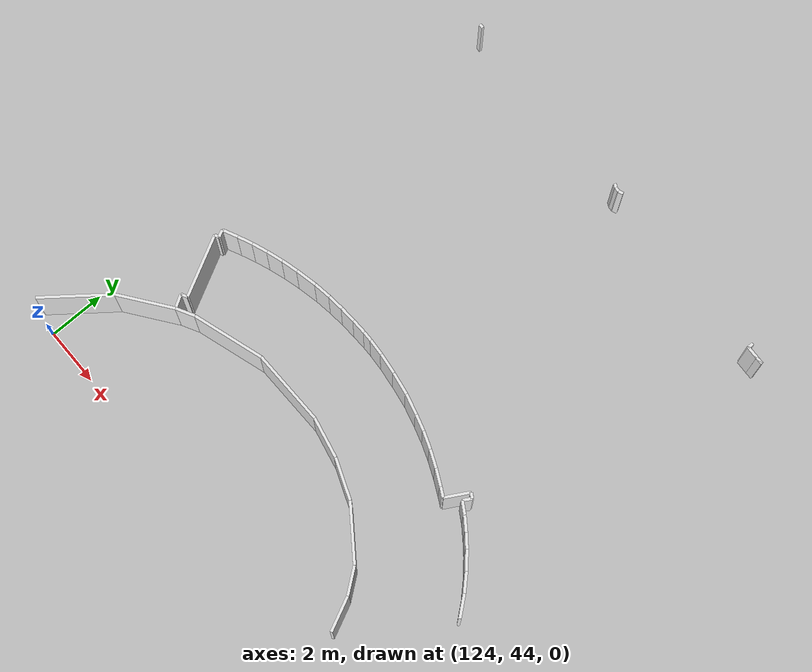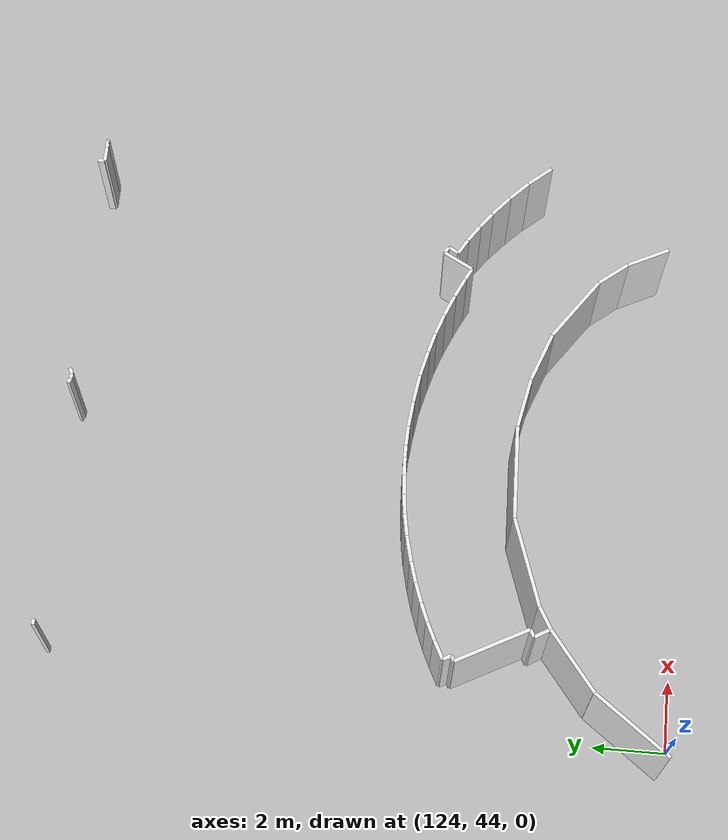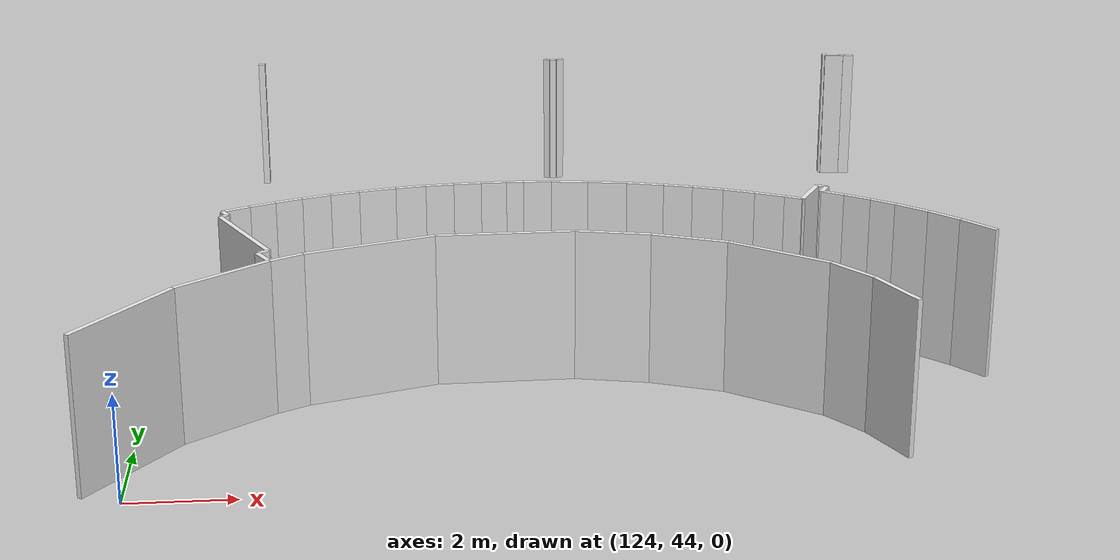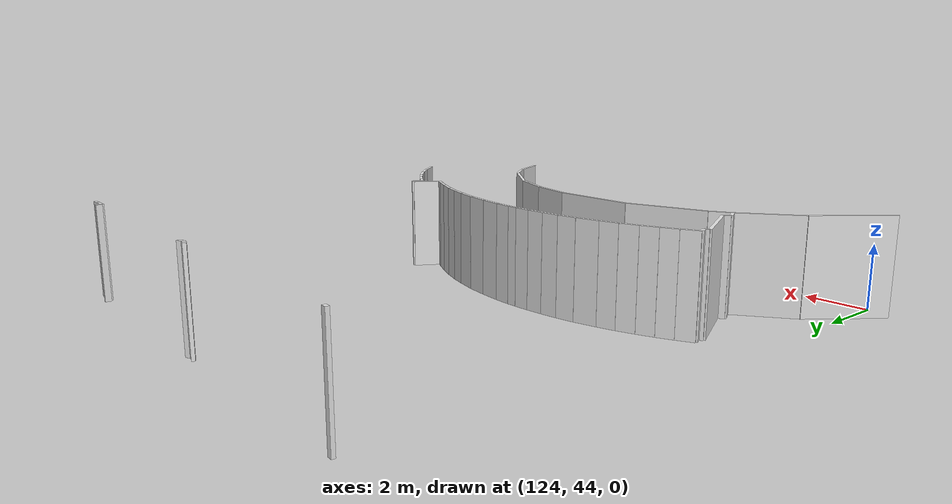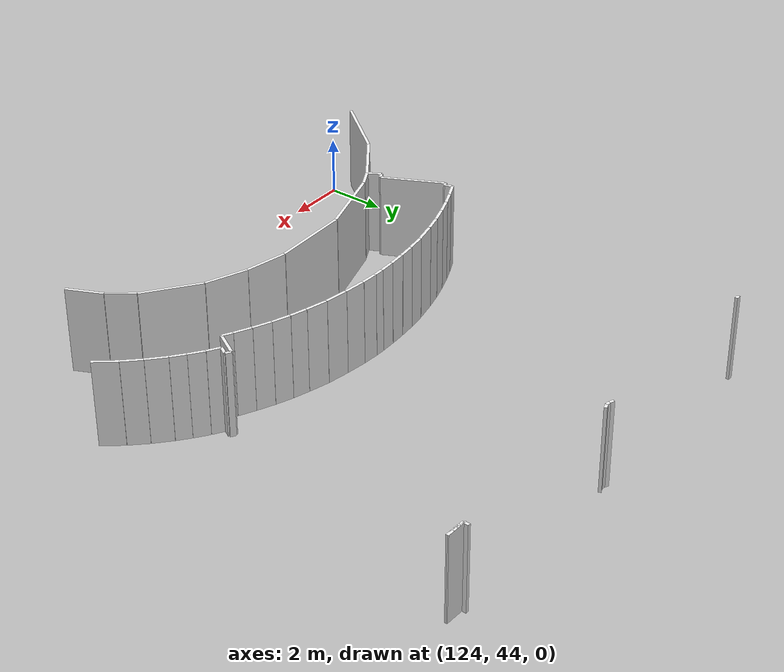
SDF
<sdf version="1.6">
 <world name="default">
  <model name="wall_137.4_45.3">
   <static>true</static>
   <pose>137.43499999999767 45.33499999996275 1.5 0 0 2.023768184880482</pose>
   <link name="link">
    <visual name="visual">
     <geometry><box><size>1.2567418190697117 0.1 3</size></box></geometry>
     <material>
      <script><uri>file://media/materials/scripts/gazebo.material</uri><name>Gazebo/White</name></script>
     </material>
    </visual>
   </link>
  </model>
  <model name="wall_136.8_46.3">
   <static>true</static>
   <pose>136.84999999997672 46.294999999925494 1.5 0 0 2.23620628008944</pose>
   <link name="link">
    <visual name="visual">
     <geometry><box><size>1.00424100695654 0.1 3</size></box></geometry>
     <material>
      <script><uri>file://media/materials/scripts/gazebo.material</uri><name>Gazebo/White</name></script>
     </material>
    </visual>
   </link>
  </model>
  <model name="wall_135.7_47.3">
   <static>true</static>
   <pose>135.69499999997788 47.294999999925494 1.5 0 0 2.52022459985605</pose>
   <link name="link">
    <visual name="visual">
     <geometry><box><size>2.0785090810284466 0.1 3</size></box></geometry>
     <material>
      <script><uri>file://media/materials/scripts/gazebo.material</uri><name>Gazebo/White</name></script>
     </material>
    </visual>
   </link>
  </model>
  <model name="wall_134.2_48.2">
   <static>true</static>
   <pose>134.16499999997905 48.15999999991618 1.5 0 0 2.7788283943136243</pose>
   <link name="link">
    <visual name="visual">
     <geometry><box><size>1.4653668482692697 0.1 3</size></box></geometry>
     <material>
      <script><uri>file://media/materials/scripts/gazebo.material</uri><name>Gazebo/White</name></script>
     </material>
    </visual>
   </link>
  </model>
  <model name="wall_132.8_48.6">
   <static>true</static>
   <pose>132.77499999999418 48.56499999994412 1.5 0 0 2.9387475563767675</pose>
   <link name="link">
    <visual name="visual">
     <geometry><box><size>1.4395138067935933 0.1 3</size></box></geometry>
     <material>
      <script><uri>file://media/materials/scripts/gazebo.material</uri><name>Gazebo/White</name></script>
     </material>
    </visual>
   </link>
  </model>
  <model name="wall_130.8_48.7">
   <static>true</static>
   <pose>130.75500000000466 48.675000000046566 1.5 0 0 -3.1149829664066115</pose>
   <link name="link">
    <visual name="visual">
     <geometry><box><size>2.6309313940125887 0.1 3</size></box></geometry>
     <material>
      <script><uri>file://media/materials/scripts/gazebo.material</uri><name>Gazebo/White</name></script>
     </material>
    </visual>
   </link>
  </model>
  <model name="wall_128.2_48.2">
   <static>true</static>
   <pose>128.23500000001513 48.23999999999069 1.5 0 0 -2.8210874284542298</pose>
   <link name="link">
    <visual name="visual">
     <geometry><box><size>2.5393109302178 0.1 3</size></box></geometry>
     <material>
      <script><uri>file://media/materials/scripts/gazebo.material</uri><name>Gazebo/White</name></script>
     </material>
    </visual>
   </link>
  </model>
  <model name="wall_126.7_47.7">
   <static>true</static>
   <pose>126.73500000001513 47.674999999813735 1.5 0 0 -2.6316205938106854</pose>
   <link name="link">
    <visual name="visual">
     <geometry><box><size>0.6760177513049456 0.1 3</size></box></geometry>
     <material>
      <script><uri>file://media/materials/scripts/gazebo.material</uri><name>Gazebo/White</name></script>
     </material>
    </visual>
   </link>
  </model>
  <model name="wall_125.6_46.9">
   <static>true</static>
   <pose>125.63500000000931 46.894999999785796 1.5 0 0 -2.489207277071973</pose>
   <link name="link">
    <visual name="visual">
     <geometry><box><size>2.0260799589130722 0.1 3</size></box></geometry>
     <material>
      <script><uri>file://media/materials/scripts/gazebo.material</uri><name>Gazebo/White</name></script>
     </material>
    </visual>
   </link>
  </model>
  <model name="wall_124.1_45.3">
   <static>true</static>
   <pose>124.05500000002212 45.26000000000931 1.5 0 0 -2.2205424754970724</pose>
   <link name="link">
    <visual name="visual">
     <geometry><box><size>2.562049960132707 0.1 3</size></box></geometry>
     <material>
      <script><uri>file://media/materials/scripts/gazebo.material</uri><name>Gazebo/White</name></script>
     </material>
    </visual>
   </link>
  </model>
  <model name="wall_139.7_48.5">
   <static>true</static>
   <pose>139.72500000000582 48.50499999988824 1.5 0 0 2.2702001990573595</pose>
   <link name="link">
    <visual name="visual">
     <geometry><box><size>0.8232860984051048 0.1 3</size></box></geometry>
     <material>
      <script><uri>file://media/materials/scripts/gazebo.material</uri><name>Gazebo/White</name></script>
     </material>
    </visual>
   </link>
  </model>
  <model name="wall_139.2_49.1">
   <static>true</static>
   <pose>139.21000000002095 49.06999999983236 1.5 0 0 2.356194490192345</pose>
   <link name="link">
    <visual name="visual">
     <geometry><box><size>0.7071067811865476 0.1 3</size></box></geometry>
     <material>
      <script><uri>file://media/materials/scripts/gazebo.material</uri><name>Gazebo/White</name></script>
     </material>
    </visual>
   </link>
  </model>
  <model name="wall_138.7_49.6">
   <static>true</static>
   <pose>138.69000000000233 49.55499999993481 1.5 0 0 2.425390768629206</pose>
   <link name="link">
    <visual name="visual">
     <geometry><box><size>0.7158910533264337 0.1 3</size></box></geometry>
     <material>
      <script><uri>file://media/materials/scripts/gazebo.material</uri><name>Gazebo/White</name></script>
     </material>
    </visual>
   </link>
  </model>
  <model name="wall_138.2_49.9">
   <static>true</static>
   <pose>138.20999999999185 49.949999999953434 1.5 0 0 2.490515932379146</pose>
   <link name="link">
    <visual name="visual">
     <geometry><box><size>0.5280151511832034 0.1 3</size></box></geometry>
     <material>
      <script><uri>file://media/materials/scripts/gazebo.material</uri><name>Gazebo/White</name></script>
     </material>
    </visual>
   </link>
  </model>
  <model name="wall_137.8_50.3">
   <static>true</static>
   <pose>137.76999999998952 50.27000000001863 1.5 0 0 2.5337906570605933</pose>
   <link name="link">
    <visual name="visual">
     <geometry><box><size>0.5603570292322684 0.1 3</size></box></geometry>
     <material>
      <script><uri>file://media/materials/scripts/gazebo.material</uri><name>Gazebo/White</name></script>
     </material>
    </visual>
   </link>
  </model>
  <model name="wall_137.3_50.6">
   <static>true</static>
   <pose>137.33499999999185 50.550000000046566 1.5 0 0 2.612003055220354</pose>
   <link name="link">
    <visual name="visual">
     <geometry><box><size>0.4750789406643591 0.1 3</size></box></geometry>
     <material>
      <script><uri>file://media/materials/scripts/gazebo.material</uri><name>Gazebo/White</name></script>
     </material>
    </visual>
   </link>
  </model>
  <model name="wall_137.2_50.8">
   <static>true</static>
   <pose>137.20999999999185 50.81000000005588 1.5 0 0 1.0516502130185124</pose>
   <link name="link">
    <visual name="visual">
     <geometry><box><size>0.3224903101456472 0.1 3</size></box></geometry>
     <material>
      <script><uri>file://media/materials/scripts/gazebo.material</uri><name>Gazebo/White</name></script>
     </material>
    </visual>
   </link>
  </model>
  <model name="wall_137.2_51.0">
   <static>true</static>
   <pose>137.19999999998254 51.0 1.5 0 0 2.6344941507624737</pose>
   <link name="link">
    <visual name="visual">
     <geometry><box><size>0.205912602632718 0.1 3</size></box></geometry>
     <material>
      <script><uri>file://media/materials/scripts/gazebo.material</uri><name>Gazebo/White</name></script>
     </material>
    </visual>
   </link>
  </model>
  <model name="wall_136.9_50.6">
   <static>true</static>
   <pose>136.88999999998487 50.64999999990687 1.5 0 0 -2.073639537823308</pose>
   <link name="link">
    <visual name="visual">
     <geometry><box><size>0.9130169766789803 0.1 3</size></box></geometry>
     <material>
      <script><uri>file://media/materials/scripts/gazebo.material</uri><name>Gazebo/White</name></script>
     </material>
    </visual>
   </link>
  </model>
  <model name="wall_136.5_50.3">
   <static>true</static>
   <pose>136.5099999999802 50.33499999996275 1.5 0 0 2.6532587027240147</pose>
   <link name="link">
    <visual name="visual">
     <geometry><box><size>0.3623534186110825 0.1 3</size></box></geometry>
     <material>
      <script><uri>file://media/materials/scripts/gazebo.material</uri><name>Gazebo/White</name></script>
     </material>
    </visual>
   </link>
  </model>
  <model name="wall_136.1_50.6">
   <static>true</static>
   <pose>136.07499999998254 50.550000000046566 1.5 0 0 2.7000002909144776</pose>
   <link name="link">
    <visual name="visual">
     <geometry><box><size>0.6083584470631678 0.1 3</size></box></geometry>
     <material>
      <script><uri>file://media/materials/scripts/gazebo.material</uri><name>Gazebo/White</name></script>
     </material>
    </visual>
   </link>
  </model>
  <model name="wall_135.5_50.8">
   <static>true</static>
   <pose>135.50500000000466 50.80500000016764 1.5 0 0 2.740799204994712</pose>
   <link name="link">
    <visual name="visual">
     <geometry><box><size>0.6407807737140186 0.1 3</size></box></geometry>
     <material>
      <script><uri>file://media/materials/scripts/gazebo.material</uri><name>Gazebo/White</name></script>
     </material>
    </visual>
   </link>
  </model>
  <model name="wall_134.9_51.0">
   <static>true</static>
   <pose>134.91500000000815 51.03500000014901 1.5 0 0 2.799642826681837</pose>
   <link name="link">
    <visual name="visual">
     <geometry><box><size>0.6262587324856838 0.1 3</size></box></geometry>
     <material>
      <script><uri>file://media/materials/scripts/gazebo.material</uri><name>Gazebo/White</name></script>
     </material>
    </visual>
   </link>
  </model>
  <model name="wall_134.3_51.2">
   <static>true</static>
   <pose>134.3399999999965 51.21999999997206 1.5 0 0 2.863292995106354</pose>
   <link name="link">
    <visual name="visual">
     <geometry><box><size>0.5824087910532124 0.1 3</size></box></geometry>
     <material>
      <script><uri>file://media/materials/scripts/gazebo.material</uri><name>Gazebo/White</name></script>
     </material>
    </visual>
   </link>
  </model>
  <model name="wall_133.7_51.4">
   <static>true</static>
   <pose>133.70000000001164 51.389999999897555 1.5 0 0 2.896613990234664</pose>
   <link name="link">
    <visual name="visual">
     <geometry><box><size>0.7421590126247316 0.1 3</size></box></geometry>
     <material>
      <script><uri>file://media/materials/scripts/gazebo.material</uri><name>Gazebo/White</name></script>
     </material>
    </visual>
   </link>
  </model>
  <model name="wall_133.0_51.5">
   <static>true</static>
   <pose>132.95000000001164 51.54000000003725 1.5 0 0 2.9889433250599438</pose>
   <link name="link">
    <visual name="visual">
     <geometry><box><size>0.7891767863225628 0.1 3</size></box></geometry>
     <material>
      <script><uri>file://media/materials/scripts/gazebo.material</uri><name>Gazebo/White</name></script>
     </material>
    </visual>
   </link>
  </model>
  <model name="wall_132.2_51.6">
   <static>true</static>
   <pose>132.19500000000698 51.640000000130385 1.5 0 0 3.0324391905773007</pose>
   <link name="link">
    <visual name="visual">
     <geometry><box><size>0.7343704786990871 0.1 3</size></box></geometry>
     <material>
      <script><uri>file://media/materials/scripts/gazebo.material</uri><name>Gazebo/White</name></script>
     </material>
    </visual>
   </link>
  </model>
  <model name="wall_131.6_51.7">
   <static>true</static>
   <pose>131.55000000001746 51.69500000006519 1.5 0 0 3.0880723854950856</pose>
   <link name="link">
    <visual name="visual">
     <geometry><box><size>0.5608029956991125 0.1 3</size></box></geometry>
     <material>
      <script><uri>file://media/materials/scripts/gazebo.material</uri><name>Gazebo/White</name></script>
     </material>
    </visual>
   </link>
  </model>
  <model name="wall_131.1_51.7">
   <static>true</static>
   <pose>131.10000000000582 51.70999999996275 1.5 0 0 3.141592653589793</pose>
   <link name="link">
    <visual name="visual">
     <geometry><box><size>0.34000000002561137 0.1 3</size></box></geometry>
     <material>
      <script><uri>file://media/materials/scripts/gazebo.material</uri><name>Gazebo/White</name></script>
     </material>
    </visual>
   </link>
  </model>
  <model name="wall_130.7_51.7">
   <static>true</static>
   <pose>130.67499999998836 51.699999999953434 1.5 0 0 -3.102397051626987</pose>
   <link name="link">
    <visual name="visual">
     <geometry><box><size>0.5103920062170298 0.1 3</size></box></geometry>
     <material>
      <script><uri>file://media/materials/scripts/gazebo.material</uri><name>Gazebo/White</name></script>
     </material>
    </visual>
   </link>
  </model>
  <model name="wall_130.1_51.7">
   <static>true</static>
   <pose>130.14499999998952 51.669999999925494 1.5 0 0 -3.068993199790391</pose>
   <link name="link">
    <visual name="visual">
     <geometry><box><size>0.5514526271495808 0.1 3</size></box></geometry>
     <material>
      <script><uri>file://media/materials/scripts/gazebo.material</uri><name>Gazebo/White</name></script>
     </material>
    </visual>
   </link>
  </model>
  <model name="wall_129.6_51.6">
   <static>true</static>
   <pose>129.5899999999965 51.61999999987893 1.5 0 0 -3.0348569808415653</pose>
   <link name="link">
    <visual name="visual">
     <geometry><box><size>0.5632051136167868 0.1 3</size></box></geometry>
     <material>
      <script><uri>file://media/materials/scripts/gazebo.material</uri><name>Gazebo/White</name></script>
     </material>
    </visual>
   </link>
  </model>
  <model name="wall_129.0_51.5">
   <static>true</static>
   <pose>129.0100000000093 51.54000000003725 1.5 0 0 -2.9764439767729747</pose>
   <link name="link">
    <visual name="visual">
     <geometry><box><size>0.6082762529456124 0.1 3</size></box></geometry>
     <material>
      <script><uri>file://media/materials/scripts/gazebo.material</uri><name>Gazebo/White</name></script>
     </material>
    </visual>
   </link>
  </model>
  <model name="wall_128.4_51.4">
   <static>true</static>
   <pose>128.35000000000582 51.40500000002794 1.5 0 0 -2.909727992235222</pose>
   <link name="link">
    <visual name="visual">
     <geometry><box><size>0.7397972696466099 0.1 3</size></box></geometry>
     <material>
      <script><uri>file://media/materials/scripts/gazebo.material</uri><name>Gazebo/White</name></script>
     </material>
    </visual>
   </link>
  </model>
  <model name="wall_127.7_51.2">
   <static>true</static>
   <pose>127.70999999999185 51.23999999999069 1.5 0 0 -2.863292995106354</pose>
   <link name="link">
    <visual name="visual">
     <geometry><box><size>0.5824087910532124 0.1 3</size></box></geometry>
     <material>
      <script><uri>file://media/materials/scripts/gazebo.material</uri><name>Gazebo/White</name></script>
     </material>
    </visual>
   </link>
  </model>
  <model name="wall_127.2_51.1">
   <static>true</static>
   <pose>127.15499999999884 51.06500000017695 1.5 0 0 -2.8089729621001154</pose>
   <link name="link">
    <visual name="visual">
     <geometry><box><size>0.581893461009797 0.1 3</size></box></geometry>
     <material>
      <script><uri>file://media/materials/scripts/gazebo.material</uri><name>Gazebo/White</name></script>
     </material>
    </visual>
   </link>
  </model>
  <model name="wall_126.6_50.9">
   <static>true</static>
   <pose>126.625 50.87000000011176 1.5 0 0 -2.7678658333139023</pose>
   <link name="link">
    <visual name="visual">
     <geometry><box><size>0.5478138370687667 0.1 3</size></box></geometry>
     <material>
      <script><uri>file://media/materials/scripts/gazebo.material</uri><name>Gazebo/White</name></script>
     </material>
    </visual>
   </link>
  </model>
  <model name="wall_126.1_50.7">
   <static>true</static>
   <pose>126.13000000000466 50.65999999991618 1.5 0 0 -2.711830374125653</pose>
   <link name="link">
    <visual name="visual">
     <geometry><box><size>0.5280151513661996 0.1 3</size></box></geometry>
     <material>
      <script><uri>file://media/materials/scripts/gazebo.material</uri><name>Gazebo/White</name></script>
     </material>
    </visual>
   </link>
  </model>
  <model name="wall_125.6_50.4">
   <static>true</static>
   <pose>125.64000000001397 50.424999999813735 1.5 0 0 -2.677945044588987</pose>
   <link name="link">
    <visual name="visual">
     <geometry><box><size>0.5590169943749475 0.1 3</size></box></geometry>
     <material>
      <script><uri>file://media/materials/scripts/gazebo.material</uri><name>Gazebo/White</name></script>
     </material>
    </visual>
   </link>
  </model>
  <model name="wall_125.5_50.2">
   <static>true</static>
   <pose>125.45000000001164 50.18499999982305 1.5 0 0 -1.0899090465822627</pose>
   <link name="link">
    <visual name="visual">
     <geometry><box><size>0.25942243540278903 0.1 3</size></box></geometry>
     <material>
      <script><uri>file://media/materials/scripts/gazebo.material</uri><name>Gazebo/White</name></script>
     </material>
    </visual>
   </link>
  </model>
  <model name="wall_125.4_50.0">
   <static>true</static>
   <pose>125.44000000000233 50.03499999991618 1.5 0 0 -2.6779450455868328</pose>
   <link name="link">
    <visual name="visual">
     <geometry><box><size>0.15652475836251026 0.1 3</size></box></geometry>
     <material>
      <script><uri>file://media/materials/scripts/gazebo.material</uri><name>Gazebo/White</name></script>
     </material>
    </visual>
   </link>
  </model>
  <model name="wall_125.9_49.0">
   <static>true</static>
   <pose>125.88000000000466 49.02499999990687 1.5 0 0 -1.0888580748690009</pose>
   <link name="link">
    <visual name="visual">
     <geometry><box><size>2.2006589923848785 0.1 3</size></box></geometry>
     <material>
      <script><uri>file://media/materials/scripts/gazebo.material</uri><name>Gazebo/White</name></script>
     </material>
    </visual>
   </link>
  </model>
  <model name="wall_126.3_48.0">
   <static>true</static>
   <pose>126.29000000000815 47.98999999999069 1.5 0 0 -2.6011731546460015</pose>
   <link name="link">
    <visual name="visual">
     <geometry><box><size>0.2332380756217132 0.1 3</size></box></geometry>
     <material>
      <script><uri>file://media/materials/scripts/gazebo.material</uri><name>Gazebo/White</name></script>
     </material>
    </visual>
   </link>
  </model>
  <model name="wall_126.3_47.7">
   <static>true</static>
   <pose>126.31500000000233 47.71999999997206 1.5 0 0 -1.0338855844641808</pose>
   <link name="link">
    <visual name="visual">
     <geometry><box><size>0.48877397673011463 0.1 3</size></box></geometry>
     <material>
      <script><uri>file://media/materials/scripts/gazebo.material</uri><name>Gazebo/White</name></script>
     </material>
    </visual>
   </link>
  </model>
  <model name="wall_125.5_61.1">
   <static>true</static>
   <pose>125.51500000001397 61.14500000001863 1.5 0 0 -0.06656816228199888</pose>
   <link name="link">
    <visual name="visual">
     <geometry><box><size>0.15033296379209243 0.1 3</size></box></geometry>
     <material>
      <script><uri>file://media/materials/scripts/gazebo.material</uri><name>Gazebo/White</name></script>
     </material>
    </visual>
   </link>
  </model>
  <model name="wall_132.4_61.1">
   <static>true</static>
   <pose>132.39500000001863 61.079999999841675 1.5 0 0 -0.4324077759112656</pose>
   <link name="link">
    <visual name="visual">
     <geometry><box><size>0.14317821066040826 0.1 3</size></box></geometry>
     <material>
      <script><uri>file://media/materials/scripts/gazebo.material</uri><name>Gazebo/White</name></script>
     </material>
    </visual>
   </link>
  </model>
  <model name="wall_132.5_61.0">
   <static>true</static>
   <pose>132.52999999999884 61.044999999925494 1.5 0 0 -0.07130746321929742</pose>
   <link name="link">
    <visual name="visual">
     <geometry><box><size>0.14035668841613164 0.1 3</size></box></geometry>
     <material>
      <script><uri>file://media/materials/scripts/gazebo.material</uri><name>Gazebo/White</name></script>
     </material>
    </visual>
   </link>
  </model>
  <model name="wall_132.7_61.1">
   <static>true</static>
   <pose>132.67999999999302 61.074999999953434 1.5 0 0 0.41241044064316335</pose>
   <link name="link">
    <visual name="visual">
     <geometry><box><size>0.17464249192840064 0.1 3</size></box></geometry>
     <material>
      <script><uri>file://media/materials/scripts/gazebo.material</uri><name>Gazebo/White</name></script>
     </material>
    </visual>
   </link>
  </model>
  <model name="wall_139.2_61.0">
   <static>true</static>
   <pose>139.19500000000698 61.045000000158325 1.5 0 0 -1.6233793884701562</pose>
   <link name="link">
    <visual name="visual">
     <geometry><box><size>0.19026297584909185 0.1 3</size></box></geometry>
     <material>
      <script><uri>file://media/materials/scripts/gazebo.material</uri><name>Gazebo/White</name></script>
     </material>
    </visual>
   </link>
  </model>
  <model name="wall_139.4_60.9">
   <static>true</static>
   <pose>139.4100000000035 60.94500000006519 1.5 0 0 -0.022723361391563727</pose>
   <link name="link">
    <visual name="visual">
     <geometry><box><size>0.44011362170113727 0.1 3</size></box></geometry>
     <material>
      <script><uri>file://media/materials/scripts/gazebo.material</uri><name>Gazebo/White</name></script>
     </material>
    </visual>
   </link>
  </model>
  <model name="wall_139.8_60.9">
   <static>true</static>
   <pose>139.75500000000466 60.93999999994412 1.5 0 0 0.0</pose>
   <link name="link">
    <visual name="visual">
     <geometry><box><size>0.25 0.1 3</size></box></geometry>
     <material>
      <script><uri>file://media/materials/scripts/gazebo.material</uri><name>Gazebo/White</name></script>
     </material>
    </visual>
   </link>
  </model>
  <model name="wall_139.5_60.9">
   <static>true</static>
   <pose>139.5350000000035 60.94500000006519 1.5 0 0 -0.014491739416310578</pose>
   <link name="link">
    <visual name="visual">
     <geometry><box><size>0.6900724599692818 0.1 3</size></box></geometry>
     <material>
      <script><uri>file://media/materials/scripts/gazebo.material</uri><name>Gazebo/White</name></script>
     </material>
    </visual>
   </link>
  </model>
 </world>
</sdf>
